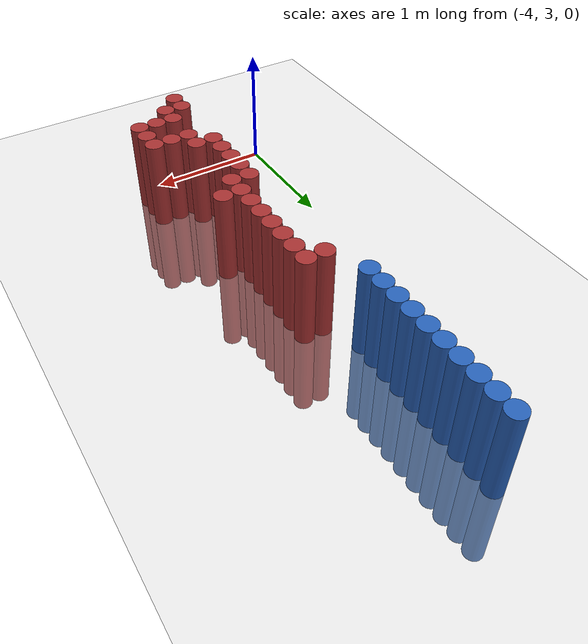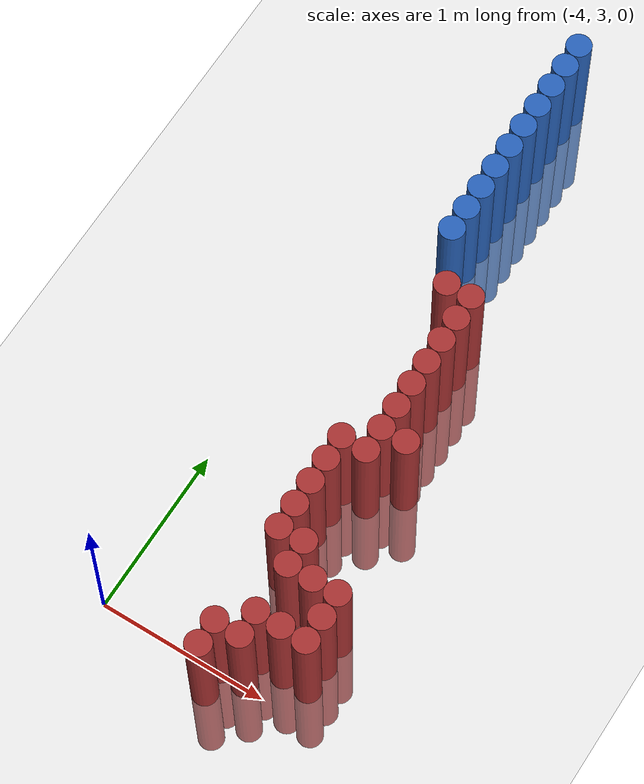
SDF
<sdf version="1.6">
 <world name="default">
  <model name="ground_plane">
   <static>1</static>
   <link name="link">
    <collision name="collision">
     <geometry><plane><normal>0 0 1</normal><size>100 100</size></plane></geometry>
     <surface><friction><ode><mu>100</mu><mu2>50</mu2></ode></friction></surface>
    </collision>
    <visual name="visual">
     <cast_shadows>0</cast_shadows>
     <geometry><plane><normal>0 0 1</normal><size>100 100</size></plane></geometry>
     <material>
      <script><uri>file://media/materials/scripts/gazebo.material</uri><name>Gazebo/Grey</name></script>
     </material>
    </visual>
   </link>
  </model>
  <model name="unit_cylinder_189">
   <static>1</static>
   <pose>-3.425000 5.575000 0.000000 0.000000 0.000000 0.000000</pose>
   <link name="link">
    <inertial>
     <mass>1</mass>
     <inertia><ixx>0.145833</ixx><ixy>0</ixy><ixz>0</ixz><iyy>0.145833</iyy><iyz>0</iyz><izz>0.125</izz></inertia>
    </inertial>
    <collision name="collision">
     <geometry><cylinder><radius>0.075000</radius><length>1.5</length></cylinder></geometry>
    </collision>
    <visual name="visual">
     <geometry><cylinder><radius>0.075000</radius><length>1.5</length></cylinder></geometry>
     <material>
      <ambient>0.152000 0.379000 0.720000 1</ambient>
      <diffuse>0.152000 0.379000 0.720000 1</diffuse>
     </material>
     <material>
      <script><name>Gazebo/Grey</name><uri>file://media/materials/scripts/gazebo.material</uri></script>
     </material>
    </visual>
   </link>
  </model>
  <model name="unit_cylinder_191">
   <static>1</static>
   <pose>-3.425000 5.725000 0.000000 0.000000 0.000000 0.000000</pose>
   <link name="link">
    <inertial>
     <mass>1</mass>
     <inertia><ixx>0.145833</ixx><ixy>0</ixy><ixz>0</ixz><iyy>0.145833</iyy><iyz>0</iyz><izz>0.125</izz></inertia>
    </inertial>
    <collision name="collision">
     <geometry><cylinder><radius>0.075000</radius><length>1.5</length></cylinder></geometry>
    </collision>
    <visual name="visual">
     <geometry><cylinder><radius>0.075000</radius><length>1.5</length></cylinder></geometry>
     <material>
      <ambient>0.152000 0.379000 0.720000 1</ambient>
      <diffuse>0.152000 0.379000 0.720000 1</diffuse>
     </material>
     <material>
      <script><name>Gazebo/Grey</name><uri>file://media/materials/scripts/gazebo.material</uri></script>
     </material>
    </visual>
   </link>
  </model>
  <model name="unit_cylinder_193">
   <static>1</static>
   <pose>-3.425000 5.875000 0.000000 0.000000 0.000000 0.000000</pose>
   <link name="link">
    <inertial>
     <mass>1</mass>
     <inertia><ixx>0.145833</ixx><ixy>0</ixy><ixz>0</ixz><iyy>0.145833</iyy><iyz>0</iyz><izz>0.125</izz></inertia>
    </inertial>
    <collision name="collision">
     <geometry><cylinder><radius>0.075000</radius><length>1.5</length></cylinder></geometry>
    </collision>
    <visual name="visual">
     <geometry><cylinder><radius>0.075000</radius><length>1.5</length></cylinder></geometry>
     <material>
      <ambient>0.152000 0.379000 0.720000 1</ambient>
      <diffuse>0.152000 0.379000 0.720000 1</diffuse>
     </material>
     <material>
      <script><name>Gazebo/Grey</name><uri>file://media/materials/scripts/gazebo.material</uri></script>
     </material>
    </visual>
   </link>
  </model>
  <model name="unit_cylinder_195">
   <static>1</static>
   <pose>-3.425000 6.025000 0.000000 0.000000 0.000000 0.000000</pose>
   <link name="link">
    <inertial>
     <mass>1</mass>
     <inertia><ixx>0.145833</ixx><ixy>0</ixy><ixz>0</ixz><iyy>0.145833</iyy><iyz>0</iyz><izz>0.125</izz></inertia>
    </inertial>
    <collision name="collision">
     <geometry><cylinder><radius>0.075000</radius><length>1.5</length></cylinder></geometry>
    </collision>
    <visual name="visual">
     <geometry><cylinder><radius>0.075000</radius><length>1.5</length></cylinder></geometry>
     <material>
      <ambient>0.152000 0.379000 0.720000 1</ambient>
      <diffuse>0.152000 0.379000 0.720000 1</diffuse>
     </material>
     <material>
      <script><name>Gazebo/Grey</name><uri>file://media/materials/scripts/gazebo.material</uri></script>
     </material>
    </visual>
   </link>
  </model>
  <model name="unit_cylinder_197">
   <static>1</static>
   <pose>-3.425000 6.175000 0.000000 0.000000 0.000000 0.000000</pose>
   <link name="link">
    <inertial>
     <mass>1</mass>
     <inertia><ixx>0.145833</ixx><ixy>0</ixy><ixz>0</ixz><iyy>0.145833</iyy><iyz>0</iyz><izz>0.125</izz></inertia>
    </inertial>
    <collision name="collision">
     <geometry><cylinder><radius>0.075000</radius><length>1.5</length></cylinder></geometry>
    </collision>
    <visual name="visual">
     <geometry><cylinder><radius>0.075000</radius><length>1.5</length></cylinder></geometry>
     <material>
      <ambient>0.152000 0.379000 0.720000 1</ambient>
      <diffuse>0.152000 0.379000 0.720000 1</diffuse>
     </material>
     <material>
      <script><name>Gazebo/Grey</name><uri>file://media/materials/scripts/gazebo.material</uri></script>
     </material>
    </visual>
   </link>
  </model>
  <model name="unit_cylinder_199">
   <static>1</static>
   <pose>-3.425000 6.325000 0.000000 0.000000 0.000000 0.000000</pose>
   <link name="link">
    <inertial>
     <mass>1</mass>
     <inertia><ixx>0.145833</ixx><ixy>0</ixy><ixz>0</ixz><iyy>0.145833</iyy><iyz>0</iyz><izz>0.125</izz></inertia>
    </inertial>
    <collision name="collision">
     <geometry><cylinder><radius>0.075000</radius><length>1.5</length></cylinder></geometry>
    </collision>
    <visual name="visual">
     <geometry><cylinder><radius>0.075000</radius><length>1.5</length></cylinder></geometry>
     <material>
      <ambient>0.152000 0.379000 0.720000 1</ambient>
      <diffuse>0.152000 0.379000 0.720000 1</diffuse>
     </material>
     <material>
      <script><name>Gazebo/Grey</name><uri>file://media/materials/scripts/gazebo.material</uri></script>
     </material>
    </visual>
   </link>
  </model>
  <model name="unit_cylinder_201">
   <static>1</static>
   <pose>-3.425000 6.475000 0.000000 0.000000 0.000000 0.000000</pose>
   <link name="link">
    <inertial>
     <mass>1</mass>
     <inertia><ixx>0.145833</ixx><ixy>0</ixy><ixz>0</ixz><iyy>0.145833</iyy><iyz>0</iyz><izz>0.125</izz></inertia>
    </inertial>
    <collision name="collision">
     <geometry><cylinder><radius>0.075000</radius><length>1.5</length></cylinder></geometry>
    </collision>
    <visual name="visual">
     <geometry><cylinder><radius>0.075000</radius><length>1.5</length></cylinder></geometry>
     <material>
      <ambient>0.152000 0.379000 0.720000 1</ambient>
      <diffuse>0.152000 0.379000 0.720000 1</diffuse>
     </material>
     <material>
      <script><name>Gazebo/Grey</name><uri>file://media/materials/scripts/gazebo.material</uri></script>
     </material>
    </visual>
   </link>
  </model>
  <model name="unit_cylinder_203">
   <static>1</static>
   <pose>-3.425000 6.625000 0.000000 0.000000 0.000000 0.000000</pose>
   <link name="link">
    <inertial>
     <mass>1</mass>
     <inertia><ixx>0.145833</ixx><ixy>0</ixy><ixz>0</ixz><iyy>0.145833</iyy><iyz>0</iyz><izz>0.125</izz></inertia>
    </inertial>
    <collision name="collision">
     <geometry><cylinder><radius>0.075000</radius><length>1.5</length></cylinder></geometry>
    </collision>
    <visual name="visual">
     <geometry><cylinder><radius>0.075000</radius><length>1.5</length></cylinder></geometry>
     <material>
      <ambient>0.152000 0.379000 0.720000 1</ambient>
      <diffuse>0.152000 0.379000 0.720000 1</diffuse>
     </material>
     <material>
      <script><name>Gazebo/Grey</name><uri>file://media/materials/scripts/gazebo.material</uri></script>
     </material>
    </visual>
   </link>
  </model>
  <model name="unit_cylinder_205">
   <static>1</static>
   <pose>-3.425000 6.775000 0.000000 0.000000 0.000000 0.000000</pose>
   <link name="link">
    <inertial>
     <mass>1</mass>
     <inertia><ixx>0.145833</ixx><ixy>0</ixy><ixz>0</ixz><iyy>0.145833</iyy><iyz>0</iyz><izz>0.125</izz></inertia>
    </inertial>
    <collision name="collision">
     <geometry><cylinder><radius>0.075000</radius><length>1.5</length></cylinder></geometry>
    </collision>
    <visual name="visual">
     <geometry><cylinder><radius>0.075000</radius><length>1.5</length></cylinder></geometry>
     <material>
      <ambient>0.152000 0.379000 0.720000 1</ambient>
      <diffuse>0.152000 0.379000 0.720000 1</diffuse>
     </material>
     <material>
      <script><name>Gazebo/Grey</name><uri>file://media/materials/scripts/gazebo.material</uri></script>
     </material>
    </visual>
   </link>
  </model>
  <model name="unit_cylinder_207">
   <static>1</static>
   <pose>-3.425000 6.925000 0.000000 0.000000 0.000000 0.000000</pose>
   <link name="link">
    <inertial>
     <mass>1</mass>
     <inertia><ixx>0.145833</ixx><ixy>0</ixy><ixz>0</ixz><iyy>0.145833</iyy><iyz>0</iyz><izz>0.125</izz></inertia>
    </inertial>
    <collision name="collision">
     <geometry><cylinder><radius>0.075000</radius><length>1.5</length></cylinder></geometry>
    </collision>
    <visual name="visual">
     <geometry><cylinder><radius>0.075000</radius><length>1.5</length></cylinder></geometry>
     <material>
      <ambient>0.152000 0.379000 0.720000 1</ambient>
      <diffuse>0.152000 0.379000 0.720000 1</diffuse>
     </material>
     <material>
      <script><name>Gazebo/Grey</name><uri>file://media/materials/scripts/gazebo.material</uri></script>
     </material>
    </visual>
   </link>
  </model>
  <model name="unit_cylinder_274">
   <static>1</static>
   <pose>-3.275000 2.875000 0.000000 0.000000 0.000000 0.000000</pose>
   <link name="link">
    <inertial>
     <mass>1</mass>
     <inertia><ixx>0.145833</ixx><ixy>0</ixy><ixz>0</ixz><iyy>0.145833</iyy><iyz>0</iyz><izz>0.125</izz></inertia>
    </inertial>
    <collision name="collision">
     <geometry><cylinder><radius>0.075000</radius><length>1.5</length></cylinder></geometry>
    </collision>
    <visual name="visual">
     <geometry><cylinder><radius>0.075000</radius><length>1.5</length></cylinder></geometry>
     <material>
      <ambient>0.648000 0.192000 0.192000 1</ambient>
      <diffuse>0.648000 0.192000 0.192000 1</diffuse>
     </material>
     <material>
      <script><name>Gazebo/Grey</name><uri>file://media/materials/scripts/gazebo.material</uri></script>
     </material>
    </visual>
   </link>
  </model>
  <model name="unit_cylinder_275">
   <static>1</static>
   <pose>-3.275000 3.025000 0.000000 0.000000 0.000000 0.000000</pose>
   <link name="link">
    <inertial>
     <mass>1</mass>
     <inertia><ixx>0.145833</ixx><ixy>0</ixy><ixz>0</ixz><iyy>0.145833</iyy><iyz>0</iyz><izz>0.125</izz></inertia>
    </inertial>
    <collision name="collision">
     <geometry><cylinder><radius>0.075000</radius><length>1.5</length></cylinder></geometry>
    </collision>
    <visual name="visual">
     <geometry><cylinder><radius>0.075000</radius><length>1.5</length></cylinder></geometry>
     <material>
      <ambient>0.648000 0.192000 0.192000 1</ambient>
      <diffuse>0.648000 0.192000 0.192000 1</diffuse>
     </material>
     <material>
      <script><name>Gazebo/Grey</name><uri>file://media/materials/scripts/gazebo.material</uri></script>
     </material>
    </visual>
   </link>
  </model>
  <model name="unit_cylinder_276">
   <static>1</static>
   <pose>-3.275000 3.625000 0.000000 0.000000 0.000000 0.000000</pose>
   <link name="link">
    <inertial>
     <mass>1</mass>
     <inertia><ixx>0.145833</ixx><ixy>0</ixy><ixz>0</ixz><iyy>0.145833</iyy><iyz>0</iyz><izz>0.125</izz></inertia>
    </inertial>
    <collision name="collision">
     <geometry><cylinder><radius>0.075000</radius><length>1.5</length></cylinder></geometry>
    </collision>
    <visual name="visual">
     <geometry><cylinder><radius>0.075000</radius><length>1.5</length></cylinder></geometry>
     <material>
      <ambient>0.648000 0.192000 0.192000 1</ambient>
      <diffuse>0.648000 0.192000 0.192000 1</diffuse>
     </material>
     <material>
      <script><name>Gazebo/Grey</name><uri>file://media/materials/scripts/gazebo.material</uri></script>
     </material>
    </visual>
   </link>
  </model>
  <model name="unit_cylinder_277">
   <static>1</static>
   <pose>-3.275000 3.775000 0.000000 0.000000 0.000000 0.000000</pose>
   <link name="link">
    <inertial>
     <mass>1</mass>
     <inertia><ixx>0.145833</ixx><ixy>0</ixy><ixz>0</ixz><iyy>0.145833</iyy><iyz>0</iyz><izz>0.125</izz></inertia>
    </inertial>
    <collision name="collision">
     <geometry><cylinder><radius>0.075000</radius><length>1.5</length></cylinder></geometry>
    </collision>
    <visual name="visual">
     <geometry><cylinder><radius>0.075000</radius><length>1.5</length></cylinder></geometry>
     <material>
      <ambient>0.648000 0.192000 0.192000 1</ambient>
      <diffuse>0.648000 0.192000 0.192000 1</diffuse>
     </material>
     <material>
      <script><name>Gazebo/Grey</name><uri>file://media/materials/scripts/gazebo.material</uri></script>
     </material>
    </visual>
   </link>
  </model>
  <model name="unit_cylinder_278">
   <static>1</static>
   <pose>-3.275000 3.925000 0.000000 0.000000 0.000000 0.000000</pose>
   <link name="link">
    <inertial>
     <mass>1</mass>
     <inertia><ixx>0.145833</ixx><ixy>0</ixy><ixz>0</ixz><iyy>0.145833</iyy><iyz>0</iyz><izz>0.125</izz></inertia>
    </inertial>
    <collision name="collision">
     <geometry><cylinder><radius>0.075000</radius><length>1.5</length></cylinder></geometry>
    </collision>
    <visual name="visual">
     <geometry><cylinder><radius>0.075000</radius><length>1.5</length></cylinder></geometry>
     <material>
      <ambient>0.648000 0.192000 0.192000 1</ambient>
      <diffuse>0.648000 0.192000 0.192000 1</diffuse>
     </material>
     <material>
      <script><name>Gazebo/Grey</name><uri>file://media/materials/scripts/gazebo.material</uri></script>
     </material>
    </visual>
   </link>
  </model>
  <model name="unit_cylinder_279">
   <static>1</static>
   <pose>-3.275000 4.075000 0.000000 0.000000 0.000000 0.000000</pose>
   <link name="link">
    <inertial>
     <mass>1</mass>
     <inertia><ixx>0.145833</ixx><ixy>0</ixy><ixz>0</ixz><iyy>0.145833</iyy><iyz>0</iyz><izz>0.125</izz></inertia>
    </inertial>
    <collision name="collision">
     <geometry><cylinder><radius>0.075000</radius><length>1.5</length></cylinder></geometry>
    </collision>
    <visual name="visual">
     <geometry><cylinder><radius>0.075000</radius><length>1.5</length></cylinder></geometry>
     <material>
      <ambient>0.648000 0.192000 0.192000 1</ambient>
      <diffuse>0.648000 0.192000 0.192000 1</diffuse>
     </material>
     <material>
      <script><name>Gazebo/Grey</name><uri>file://media/materials/scripts/gazebo.material</uri></script>
     </material>
    </visual>
   </link>
  </model>
  <model name="unit_cylinder_280">
   <static>1</static>
   <pose>-3.275000 4.225000 0.000000 0.000000 0.000000 0.000000</pose>
   <link name="link">
    <inertial>
     <mass>1</mass>
     <inertia><ixx>0.145833</ixx><ixy>0</ixy><ixz>0</ixz><iyy>0.145833</iyy><iyz>0</iyz><izz>0.125</izz></inertia>
    </inertial>
    <collision name="collision">
     <geometry><cylinder><radius>0.075000</radius><length>1.5</length></cylinder></geometry>
    </collision>
    <visual name="visual">
     <geometry><cylinder><radius>0.075000</radius><length>1.5</length></cylinder></geometry>
     <material>
      <ambient>0.648000 0.192000 0.192000 1</ambient>
      <diffuse>0.648000 0.192000 0.192000 1</diffuse>
     </material>
     <material>
      <script><name>Gazebo/Grey</name><uri>file://media/materials/scripts/gazebo.material</uri></script>
     </material>
    </visual>
   </link>
  </model>
  <model name="unit_cylinder_281">
   <static>1</static>
   <pose>-3.275000 5.275000 0.000000 0.000000 0.000000 0.000000</pose>
   <link name="link">
    <inertial>
     <mass>1</mass>
     <inertia><ixx>0.145833</ixx><ixy>0</ixy><ixz>0</ixz><iyy>0.145833</iyy><iyz>0</iyz><izz>0.125</izz></inertia>
    </inertial>
    <collision name="collision">
     <geometry><cylinder><radius>0.075000</radius><length>1.5</length></cylinder></geometry>
    </collision>
    <visual name="visual">
     <geometry><cylinder><radius>0.075000</radius><length>1.5</length></cylinder></geometry>
     <material>
      <ambient>0.648000 0.192000 0.192000 1</ambient>
      <diffuse>0.648000 0.192000 0.192000 1</diffuse>
     </material>
     <material>
      <script><name>Gazebo/Grey</name><uri>file://media/materials/scripts/gazebo.material</uri></script>
     </material>
    </visual>
   </link>
  </model>
  <model name="unit_cylinder_288">
   <static>1</static>
   <pose>-3.125000 3.025000 0.000000 0.000000 0.000000 0.000000</pose>
   <link name="link">
    <inertial>
     <mass>1</mass>
     <inertia><ixx>0.145833</ixx><ixy>0</ixy><ixz>0</ixz><iyy>0.145833</iyy><iyz>0</iyz><izz>0.125</izz></inertia>
    </inertial>
    <collision name="collision">
     <geometry><cylinder><radius>0.075000</radius><length>1.5</length></cylinder></geometry>
    </collision>
    <visual name="visual">
     <geometry><cylinder><radius>0.075000</radius><length>1.5</length></cylinder></geometry>
     <material>
      <ambient>0.648000 0.192000 0.192000 1</ambient>
      <diffuse>0.648000 0.192000 0.192000 1</diffuse>
     </material>
     <material>
      <script><name>Gazebo/Grey</name><uri>file://media/materials/scripts/gazebo.material</uri></script>
     </material>
    </visual>
   </link>
  </model>
  <model name="unit_cylinder_289">
   <static>1</static>
   <pose>-3.125000 3.175000 0.000000 0.000000 0.000000 0.000000</pose>
   <link name="link">
    <inertial>
     <mass>1</mass>
     <inertia><ixx>0.145833</ixx><ixy>0</ixy><ixz>0</ixz><iyy>0.145833</iyy><iyz>0</iyz><izz>0.125</izz></inertia>
    </inertial>
    <collision name="collision">
     <geometry><cylinder><radius>0.075000</radius><length>1.5</length></cylinder></geometry>
    </collision>
    <visual name="visual">
     <geometry><cylinder><radius>0.075000</radius><length>1.5</length></cylinder></geometry>
     <material>
      <ambient>0.648000 0.192000 0.192000 1</ambient>
      <diffuse>0.648000 0.192000 0.192000 1</diffuse>
     </material>
     <material>
      <script><name>Gazebo/Grey</name><uri>file://media/materials/scripts/gazebo.material</uri></script>
     </material>
    </visual>
   </link>
  </model>
  <model name="unit_cylinder_290">
   <static>1</static>
   <pose>-3.125000 3.475000 0.000000 0.000000 0.000000 0.000000</pose>
   <link name="link">
    <inertial>
     <mass>1</mass>
     <inertia><ixx>0.145833</ixx><ixy>0</ixy><ixz>0</ixz><iyy>0.145833</iyy><iyz>0</iyz><izz>0.125</izz></inertia>
    </inertial>
    <collision name="collision">
     <geometry><cylinder><radius>0.075000</radius><length>1.5</length></cylinder></geometry>
    </collision>
    <visual name="visual">
     <geometry><cylinder><radius>0.075000</radius><length>1.5</length></cylinder></geometry>
     <material>
      <ambient>0.648000 0.192000 0.192000 1</ambient>
      <diffuse>0.648000 0.192000 0.192000 1</diffuse>
     </material>
     <material>
      <script><name>Gazebo/Grey</name><uri>file://media/materials/scripts/gazebo.material</uri></script>
     </material>
    </visual>
   </link>
  </model>
  <model name="unit_cylinder_291">
   <static>1</static>
   <pose>-3.125000 3.625000 0.000000 0.000000 0.000000 0.000000</pose>
   <link name="link">
    <inertial>
     <mass>1</mass>
     <inertia><ixx>0.145833</ixx><ixy>0</ixy><ixz>0</ixz><iyy>0.145833</iyy><iyz>0</iyz><izz>0.125</izz></inertia>
    </inertial>
    <collision name="collision">
     <geometry><cylinder><radius>0.075000</radius><length>1.5</length></cylinder></geometry>
    </collision>
    <visual name="visual">
     <geometry><cylinder><radius>0.075000</radius><length>1.5</length></cylinder></geometry>
     <material>
      <ambient>0.648000 0.192000 0.192000 1</ambient>
      <diffuse>0.648000 0.192000 0.192000 1</diffuse>
     </material>
     <material>
      <script><name>Gazebo/Grey</name><uri>file://media/materials/scripts/gazebo.material</uri></script>
     </material>
    </visual>
   </link>
  </model>
  <model name="unit_cylinder_292">
   <static>1</static>
   <pose>-3.125000 4.225000 0.000000 0.000000 0.000000 0.000000</pose>
   <link name="link">
    <inertial>
     <mass>1</mass>
     <inertia><ixx>0.145833</ixx><ixy>0</ixy><ixz>0</ixz><iyy>0.145833</iyy><iyz>0</iyz><izz>0.125</izz></inertia>
    </inertial>
    <collision name="collision">
     <geometry><cylinder><radius>0.075000</radius><length>1.5</length></cylinder></geometry>
    </collision>
    <visual name="visual">
     <geometry><cylinder><radius>0.075000</radius><length>1.5</length></cylinder></geometry>
     <material>
      <ambient>0.648000 0.192000 0.192000 1</ambient>
      <diffuse>0.648000 0.192000 0.192000 1</diffuse>
     </material>
     <material>
      <script><name>Gazebo/Grey</name><uri>file://media/materials/scripts/gazebo.material</uri></script>
     </material>
    </visual>
   </link>
  </model>
  <model name="unit_cylinder_293">
   <static>1</static>
   <pose>-3.125000 4.375000 0.000000 0.000000 0.000000 0.000000</pose>
   <link name="link">
    <inertial>
     <mass>1</mass>
     <inertia><ixx>0.145833</ixx><ixy>0</ixy><ixz>0</ixz><iyy>0.145833</iyy><iyz>0</iyz><izz>0.125</izz></inertia>
    </inertial>
    <collision name="collision">
     <geometry><cylinder><radius>0.075000</radius><length>1.5</length></cylinder></geometry>
    </collision>
    <visual name="visual">
     <geometry><cylinder><radius>0.075000</radius><length>1.5</length></cylinder></geometry>
     <material>
      <ambient>0.648000 0.192000 0.192000 1</ambient>
      <diffuse>0.648000 0.192000 0.192000 1</diffuse>
     </material>
     <material>
      <script><name>Gazebo/Grey</name><uri>file://media/materials/scripts/gazebo.material</uri></script>
     </material>
    </visual>
   </link>
  </model>
  <model name="unit_cylinder_294">
   <static>1</static>
   <pose>-3.125000 4.525000 0.000000 0.000000 0.000000 0.000000</pose>
   <link name="link">
    <inertial>
     <mass>1</mass>
     <inertia><ixx>0.145833</ixx><ixy>0</ixy><ixz>0</ixz><iyy>0.145833</iyy><iyz>0</iyz><izz>0.125</izz></inertia>
    </inertial>
    <collision name="collision">
     <geometry><cylinder><radius>0.075000</radius><length>1.5</length></cylinder></geometry>
    </collision>
    <visual name="visual">
     <geometry><cylinder><radius>0.075000</radius><length>1.5</length></cylinder></geometry>
     <material>
      <ambient>0.648000 0.192000 0.192000 1</ambient>
      <diffuse>0.648000 0.192000 0.192000 1</diffuse>
     </material>
     <material>
      <script><name>Gazebo/Grey</name><uri>file://media/materials/scripts/gazebo.material</uri></script>
     </material>
    </visual>
   </link>
  </model>
  <model name="unit_cylinder_295">
   <static>1</static>
   <pose>-3.125000 4.675000 0.000000 0.000000 0.000000 0.000000</pose>
   <link name="link">
    <inertial>
     <mass>1</mass>
     <inertia><ixx>0.145833</ixx><ixy>0</ixy><ixz>0</ixz><iyy>0.145833</iyy><iyz>0</iyz><izz>0.125</izz></inertia>
    </inertial>
    <collision name="collision">
     <geometry><cylinder><radius>0.075000</radius><length>1.5</length></cylinder></geometry>
    </collision>
    <visual name="visual">
     <geometry><cylinder><radius>0.075000</radius><length>1.5</length></cylinder></geometry>
     <material>
      <ambient>0.648000 0.192000 0.192000 1</ambient>
      <diffuse>0.648000 0.192000 0.192000 1</diffuse>
     </material>
     <material>
      <script><name>Gazebo/Grey</name><uri>file://media/materials/scripts/gazebo.material</uri></script>
     </material>
    </visual>
   </link>
  </model>
  <model name="unit_cylinder_296">
   <static>1</static>
   <pose>-3.125000 4.825000 0.000000 0.000000 0.000000 0.000000</pose>
   <link name="link">
    <inertial>
     <mass>1</mass>
     <inertia><ixx>0.145833</ixx><ixy>0</ixy><ixz>0</ixz><iyy>0.145833</iyy><iyz>0</iyz><izz>0.125</izz></inertia>
    </inertial>
    <collision name="collision">
     <geometry><cylinder><radius>0.075000</radius><length>1.5</length></cylinder></geometry>
    </collision>
    <visual name="visual">
     <geometry><cylinder><radius>0.075000</radius><length>1.5</length></cylinder></geometry>
     <material>
      <ambient>0.648000 0.192000 0.192000 1</ambient>
      <diffuse>0.648000 0.192000 0.192000 1</diffuse>
     </material>
     <material>
      <script><name>Gazebo/Grey</name><uri>file://media/materials/scripts/gazebo.material</uri></script>
     </material>
    </visual>
   </link>
  </model>
  <model name="unit_cylinder_297">
   <static>1</static>
   <pose>-3.125000 4.975000 0.000000 0.000000 0.000000 0.000000</pose>
   <link name="link">
    <inertial>
     <mass>1</mass>
     <inertia><ixx>0.145833</ixx><ixy>0</ixy><ixz>0</ixz><iyy>0.145833</iyy><iyz>0</iyz><izz>0.125</izz></inertia>
    </inertial>
    <collision name="collision">
     <geometry><cylinder><radius>0.075000</radius><length>1.5</length></cylinder></geometry>
    </collision>
    <visual name="visual">
     <geometry><cylinder><radius>0.075000</radius><length>1.5</length></cylinder></geometry>
     <material>
      <ambient>0.648000 0.192000 0.192000 1</ambient>
      <diffuse>0.648000 0.192000 0.192000 1</diffuse>
     </material>
     <material>
      <script><name>Gazebo/Grey</name><uri>file://media/materials/scripts/gazebo.material</uri></script>
     </material>
    </visual>
   </link>
  </model>
  <model name="unit_cylinder_298">
   <static>1</static>
   <pose>-3.125000 5.125000 0.000000 0.000000 0.000000 0.000000</pose>
   <link name="link">
    <inertial>
     <mass>1</mass>
     <inertia><ixx>0.145833</ixx><ixy>0</ixy><ixz>0</ixz><iyy>0.145833</iyy><iyz>0</iyz><izz>0.125</izz></inertia>
    </inertial>
    <collision name="collision">
     <geometry><cylinder><radius>0.075000</radius><length>1.5</length></cylinder></geometry>
    </collision>
    <visual name="visual">
     <geometry><cylinder><radius>0.075000</radius><length>1.5</length></cylinder></geometry>
     <material>
      <ambient>0.648000 0.192000 0.192000 1</ambient>
      <diffuse>0.648000 0.192000 0.192000 1</diffuse>
     </material>
     <material>
      <script><name>Gazebo/Grey</name><uri>file://media/materials/scripts/gazebo.material</uri></script>
     </material>
    </visual>
   </link>
  </model>
  <model name="unit_cylinder_299">
   <static>1</static>
   <pose>-3.125000 5.275000 0.000000 0.000000 0.000000 0.000000</pose>
   <link name="link">
    <inertial>
     <mass>1</mass>
     <inertia><ixx>0.145833</ixx><ixy>0</ixy><ixz>0</ixz><iyy>0.145833</iyy><iyz>0</iyz><izz>0.125</izz></inertia>
    </inertial>
    <collision name="collision">
     <geometry><cylinder><radius>0.075000</radius><length>1.5</length></cylinder></geometry>
    </collision>
    <visual name="visual">
     <geometry><cylinder><radius>0.075000</radius><length>1.5</length></cylinder></geometry>
     <material>
      <ambient>0.648000 0.192000 0.192000 1</ambient>
      <diffuse>0.648000 0.192000 0.192000 1</diffuse>
     </material>
     <material>
      <script><name>Gazebo/Grey</name><uri>file://media/materials/scripts/gazebo.material</uri></script>
     </material>
    </visual>
   </link>
  </model>
  <model name="unit_cylinder_310">
   <static>1</static>
   <pose>-2.975000 3.175000 0.000000 0.000000 0.000000 0.000000</pose>
   <link name="link">
    <inertial>
     <mass>1</mass>
     <inertia><ixx>0.145833</ixx><ixy>0</ixy><ixz>0</ixz><iyy>0.145833</iyy><iyz>0</iyz><izz>0.125</izz></inertia>
    </inertial>
    <collision name="collision">
     <geometry><cylinder><radius>0.075000</radius><length>1.5</length></cylinder></geometry>
    </collision>
    <visual name="visual">
     <geometry><cylinder><radius>0.075000</radius><length>1.5</length></cylinder></geometry>
     <material>
      <ambient>0.648000 0.192000 0.192000 1</ambient>
      <diffuse>0.648000 0.192000 0.192000 1</diffuse>
     </material>
     <material>
      <script><name>Gazebo/Grey</name><uri>file://media/materials/scripts/gazebo.material</uri></script>
     </material>
    </visual>
   </link>
  </model>
  <model name="unit_cylinder_311">
   <static>1</static>
   <pose>-2.975000 3.475000 0.000000 0.000000 0.000000 0.000000</pose>
   <link name="link">
    <inertial>
     <mass>1</mass>
     <inertia><ixx>0.145833</ixx><ixy>0</ixy><ixz>0</ixz><iyy>0.145833</iyy><iyz>0</iyz><izz>0.125</izz></inertia>
    </inertial>
    <collision name="collision">
     <geometry><cylinder><radius>0.075000</radius><length>1.5</length></cylinder></geometry>
    </collision>
    <visual name="visual">
     <geometry><cylinder><radius>0.075000</radius><length>1.5</length></cylinder></geometry>
     <material>
      <ambient>0.648000 0.192000 0.192000 1</ambient>
      <diffuse>0.648000 0.192000 0.192000 1</diffuse>
     </material>
     <material>
      <script><name>Gazebo/Grey</name><uri>file://media/materials/scripts/gazebo.material</uri></script>
     </material>
    </visual>
   </link>
  </model>
  <model name="unit_cylinder_312">
   <static>1</static>
   <pose>-2.975000 4.375000 0.000000 0.000000 0.000000 0.000000</pose>
   <link name="link">
    <inertial>
     <mass>1</mass>
     <inertia><ixx>0.145833</ixx><ixy>0</ixy><ixz>0</ixz><iyy>0.145833</iyy><iyz>0</iyz><izz>0.125</izz></inertia>
    </inertial>
    <collision name="collision">
     <geometry><cylinder><radius>0.075000</radius><length>1.5</length></cylinder></geometry>
    </collision>
    <visual name="visual">
     <geometry><cylinder><radius>0.075000</radius><length>1.5</length></cylinder></geometry>
     <material>
      <ambient>0.648000 0.192000 0.192000 1</ambient>
      <diffuse>0.648000 0.192000 0.192000 1</diffuse>
     </material>
     <material>
      <script><name>Gazebo/Grey</name><uri>file://media/materials/scripts/gazebo.material</uri></script>
     </material>
    </visual>
   </link>
  </model>
  <model name="unit_cylinder_322">
   <static>1</static>
   <pose>-2.825000 3.175000 0.000000 0.000000 0.000000 0.000000</pose>
   <link name="link">
    <inertial>
     <mass>1</mass>
     <inertia><ixx>0.145833</ixx><ixy>0</ixy><ixz>0</ixz><iyy>0.145833</iyy><iyz>0</iyz><izz>0.125</izz></inertia>
    </inertial>
    <collision name="collision">
     <geometry><cylinder><radius>0.075000</radius><length>1.5</length></cylinder></geometry>
    </collision>
    <visual name="visual">
     <geometry><cylinder><radius>0.075000</radius><length>1.5</length></cylinder></geometry>
     <material>
      <ambient>0.648000 0.192000 0.192000 1</ambient>
      <diffuse>0.648000 0.192000 0.192000 1</diffuse>
     </material>
     <material>
      <script><name>Gazebo/Grey</name><uri>file://media/materials/scripts/gazebo.material</uri></script>
     </material>
    </visual>
   </link>
  </model>
  <model name="unit_cylinder_323">
   <static>1</static>
   <pose>-2.825000 3.325000 0.000000 0.000000 0.000000 0.000000</pose>
   <link name="link">
    <inertial>
     <mass>1</mass>
     <inertia><ixx>0.145833</ixx><ixy>0</ixy><ixz>0</ixz><iyy>0.145833</iyy><iyz>0</iyz><izz>0.125</izz></inertia>
    </inertial>
    <collision name="collision">
     <geometry><cylinder><radius>0.075000</radius><length>1.5</length></cylinder></geometry>
    </collision>
    <visual name="visual">
     <geometry><cylinder><radius>0.075000</radius><length>1.5</length></cylinder></geometry>
     <material>
      <ambient>0.648000 0.192000 0.192000 1</ambient>
      <diffuse>0.648000 0.192000 0.192000 1</diffuse>
     </material>
     <material>
      <script><name>Gazebo/Grey</name><uri>file://media/materials/scripts/gazebo.material</uri></script>
     </material>
    </visual>
   </link>
  </model>
  <model name="unit_cylinder_324">
   <static>1</static>
   <pose>-2.825000 3.475000 0.000000 0.000000 0.000000 0.000000</pose>
   <link name="link">
    <inertial>
     <mass>1</mass>
     <inertia><ixx>0.145833</ixx><ixy>0</ixy><ixz>0</ixz><iyy>0.145833</iyy><iyz>0</iyz><izz>0.125</izz></inertia>
    </inertial>
    <collision name="collision">
     <geometry><cylinder><radius>0.075000</radius><length>1.5</length></cylinder></geometry>
    </collision>
    <visual name="visual">
     <geometry><cylinder><radius>0.075000</radius><length>1.5</length></cylinder></geometry>
     <material>
      <ambient>0.648000 0.192000 0.192000 1</ambient>
      <diffuse>0.648000 0.192000 0.192000 1</diffuse>
     </material>
     <material>
      <script><name>Gazebo/Grey</name><uri>file://media/materials/scripts/gazebo.material</uri></script>
     </material>
    </visual>
   </link>
  </model>
 </world>
</sdf>
